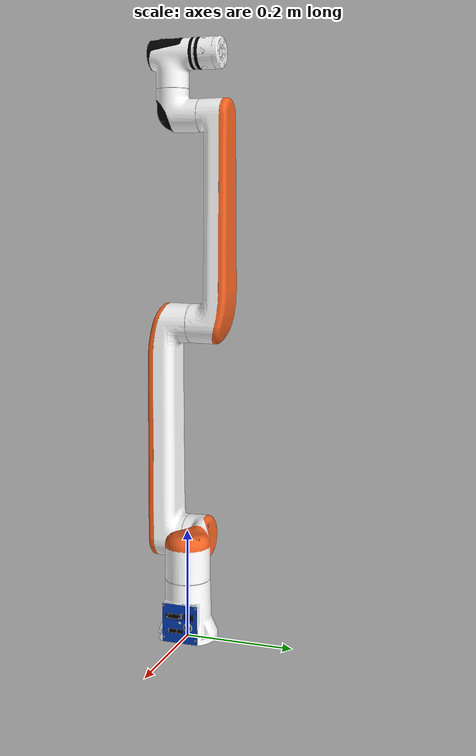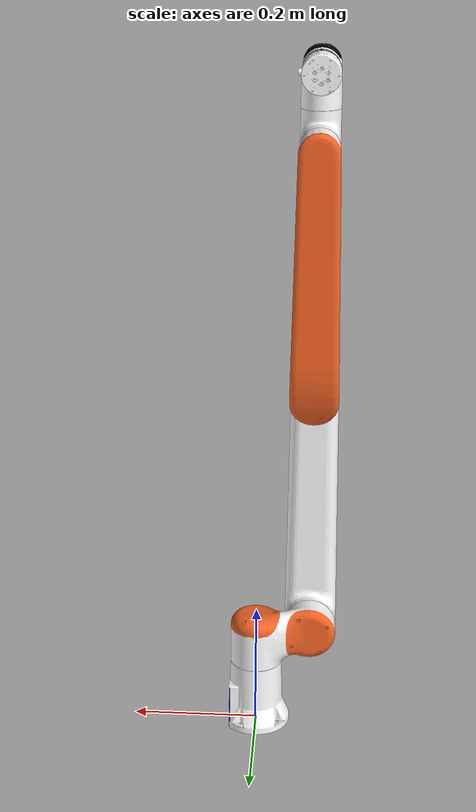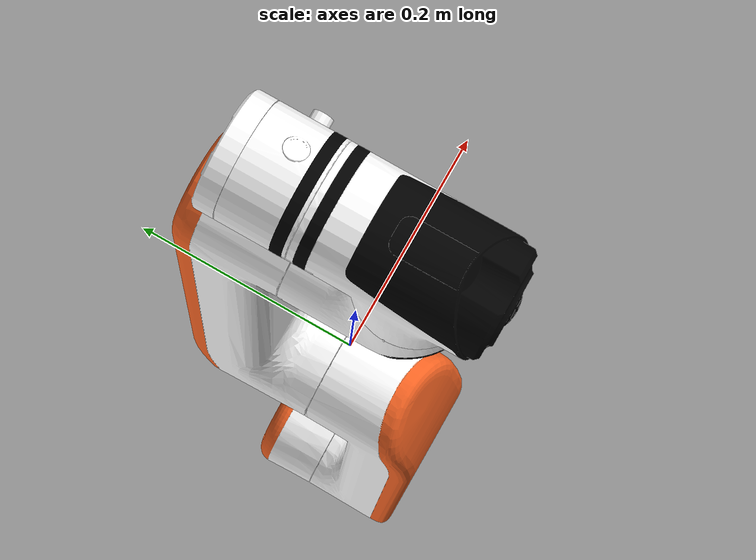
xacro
<?xml version='1.0' encoding='utf-8'?>
<robot name="rm_eco63_description">
  <link name="base_root" />
  <joint name="base_root_joint" type="fixed">
    <origin rpy="0 0 0" xyz="0 0 0" />
    <parent link="base_root" />
    <child link="base_link" />
  </joint>
  <link name="base_link">
    <inertial>
      <origin rpy="0 0 0" xyz="0.00020533 -8.2462E-05 0.042566" />
      <mass value="1" />
      <inertia ixx="0.00082414" ixy="-2.9336E-06" ixz="2.8699E-05" iyy="0.0008206" iyz="-2.2123E-06" izz="0.00068569" />
    </inertial>
    <collision>
      <origin rpy="0 0 0" xyz="0 0 0" />
      <geometry>
        <mesh filename="package://rm_description/meshes/rm_eco63_arm/base_link.STL" />
      </geometry>
    </collision>
    <visual>
      <origin xyz="0 0 0" rpy="0 0 0" />
      <geometry>
        <mesh filename="package://rm_description/meshes/dae/eco63/base_link.dae" />
      </geometry>
    </visual>
  </link>
  <link name="Link1">
    <inertial>
      <origin rpy="0 0 0" xyz="-0.0122 -0.0001 -0.0346" />
      <mass value="1.6026" />
      <inertia ixx="0.0020078355" ixy="-0.000043739" ixz="-0.0006663696" iyy="0.0033806191" iyz="-0.0000114927" izz="0.0025157844" />
    </inertial>
    <collision>
      <origin rpy="0 0 0" xyz="0 0 0" />
      <geometry>
        <mesh filename="package://rm_description/meshes/rm_eco63_arm/Link1.STL" />
      </geometry>
    </collision>
    <visual>
      <origin xyz="0 0 0" rpy="0 0 0" />
      <geometry>
        <mesh filename="package://rm_description/meshes/dae/eco63/link1_v1.0.dae" />
      </geometry>
    </visual>
  </link>
  <joint name="joint1" type="revolute">
    <origin rpy="0 0 0" xyz="0 0 0.1625" />
    <parent link="base_link" />
    <child link="Link1" />
    <axis xyz="0 0 1" />
    <limit effort="60" lower="-3.106" upper="3.106" velocity="3.14" />
  </joint>
  <link name="Link2">
    <inertial>
      <origin rpy="0 0 0" xyz="0.123600000728332 9.86871964907185e-05 0.0551000007331541" />
      <mass value="2.8169" />
      <inertia ixx="0.00305137723898191" ixy="2.86097284213423e-06" ixz="0.00369151818306214" iyy="0.059635782030822" iyz="-4.77799806514506e-06" izz="0.059632876930196" />
    </inertial>
    <collision>
      <origin rpy="-3.14158530717959 0 -7.34641020638804e-06" xyz="0 0 0" />
      <geometry>
        <mesh filename="package://rm_description/meshes/rm_eco63_arm/Link2.STL" />
      </geometry>
    </collision>
    <visual>
      <origin xyz="0 0 0" rpy="-3.14158530717959 0 -7.34641020638804e-06" />
      <geometry>
        <mesh filename="package://rm_description/meshes/dae/eco63/link2_v1.0.dae" />
      </geometry>
    </visual>
  </link>
  <joint name="joint2" type="revolute">
    <origin rpy="-1.57079265348487 -1.57079265358979 3.14159265348487" xyz="-0.086 0 0" />
    <parent link="Link1" />
    <child link="Link2" />
    <axis xyz="5.39695145436e-11 7.34641020638507e-06 -0.999999999973015" />
    <limit effort="60" lower="-3.106" upper="2.356" velocity="3.14" />
  </joint>
  <link name="Link3">
    <inertial>
      <origin rpy="0 0 0" xyz="0.160246774026992 -9.88120953800659e-05 0.00679865060963923" />
      <mass value="2.6857" />
      <inertia ixx="0.00303448689033119" ixy="-7.56149251500227e-06" ixz="-0.00404883344765761" iyy="0.0669637574904248" iyz="-7.95641618581859e-06" izz="0.0659921968192439" />
    </inertial>
    <collision>
      <origin rpy="-6.43905470160977e-08 -0.00872659994555747 7.41080075348466e-06" xyz="0 0 0" />
      <geometry>
        <mesh filename="package://rm_description/meshes/rm_eco63_arm/Link3.STL" />
      </geometry>
    </collision>
    <visual>
      <origin xyz="0 0 0" rpy="-6.43905470160977e-08 -0.00872659994555747 7.41080075348466e-06" />
      <geometry>
        <mesh filename="package://rm_description/meshes/dae/eco63/link3_v1.0.dae" />
      </geometry>
    </visual>
  </link>
  <joint name="joint3" type="revolute">
    <origin rpy="-3.14158530717959 -0.00872660000000014 0" xyz="0.409999999988936 -3.01202818462926e-06 0" />
    <parent link="Link2" />
    <child link="Link3" />
    <axis xyz="-0.00872648918596077 -2.79725562366948e-10 0.999961923468332" />
    <limit effort="30" lower="-2.932" upper="2.7576" velocity="3.14" />
  </joint>
  <link name="Link4">
    <inertial>
      <origin rpy="0 0 0" xyz="2.66160203449442e-07 -0.035899999999215 0.0036999999980435" />
      <mass value="0.625" />
      <inertia ixx="0.000545633601743592" ixy="-1.17310739645598e-07" ixz="-1.19697712100337e-07" iyy="0.000317334498257634" iyz="-0.0000813961" izz="0.0005169693" />
    </inertial>
    <collision>
      <origin rpy="5.44983364746417e-11 3.17744588418378e-08 7.41065843880045e-06" xyz="0 0 0" />
      <geometry>
        <mesh filename="package://rm_description/meshes/rm_eco63_arm/Link4.STL" />
      </geometry>
    </collision>
    <visual>
      <origin xyz="0 0 0" rpy="5.44983364746417e-11 3.17744588418378e-08 7.41065843880045e-06" />
      <geometry>
        <mesh filename="package://rm_description/meshes/dae/eco63/link4_v1.0.dae" />
      </geometry>
    </visual>
  </link>
  <joint name="joint4" type="revolute">
    <origin rpy="-0.00872659999999981 0 1.5708" xyz="0.380499512394097 2.81601353437318e-06 -0.0555806914397865" />
    <parent link="Link3" />
    <child link="Link4" />
    <axis xyz="3.17744590494417e-08 -5.42628458021758e-11 0.999999999999999" />
    <limit effort="10" lower="-3.106" upper="3.106" velocity="3.14" />
  </joint>
  <link name="Link5">
    <inertial>
      <origin rpy="0 0 0" xyz="-4.81280235991029e-08 0.0246000000003597 -0.0065999999984839" />
      <mass value="0.6743" />
      <inertia ixx="0.0006850659" ixy="-5.79550732114318e-07" ixz="-1.08014144854789e-08" iyy="0.0003873373" iyz="-0.000113520795720502" izz="0.0006178918" />
    </inertial>
    <collision>
      <origin rpy="5.42627659536425e-11 7.41065832210452e-06 -3.18016794599308e-08" xyz="0 0 0" />
      <geometry>
        <mesh filename="package://rm_description/meshes/rm_eco63_arm/Link5.STL" />
      </geometry>
    </collision>
    <visual>
      <origin xyz="0 0 0" rpy="5.42627659536425e-11 7.41065832210452e-06 -3.18016794599308e-08" />
      <geometry>
        <mesh filename="package://rm_description/meshes/dae/eco63/link5_v1.0.dae" />
      </geometry>
    </visual>
  </link>
  <joint name="joint5" type="revolute">
    <origin rpy="1.5708 0 0" xyz="8.15172428261992e-07 -0.109999999996979 -5.99481932343507e-12" />
    <parent link="Link4" />
    <child link="Link5" />
    <axis xyz="7.41065832198128e-06 -5.4498458344048e-11 0.999999999972541" />
    <limit effort="10" lower="-3.106" upper="3.106" velocity="3.14" />
  </joint>
  <link name="Link6">
    <inertial>
      <origin rpy="0 0 0" xyz="0.000999999679050503 7.41120649346072e-09 -0.0101000000317744" />
      <mass value="0.248" />
      <inertia ixx="0.0000441232" ixy="-6.35329685252655e-08" ixz="-0.0000002997" iyy="0.0000350778" iyz="-2.89022206024016e-08" izz="0.0000654409" />
    </inertial>
    <collision>
      <origin rpy="5.44983364746417e-11 3.17744588418378e-08 7.41065843880045e-06" xyz="0 0 0" />
      <geometry>
        <mesh filename="package://rm_description/meshes/rm_eco63_arm/Link6_6fb.STL" />
      </geometry>
    </collision>
    <visual>
      <origin xyz="0 0 0" rpy="5.44983364746417e-11 3.17744588418378e-08 7.41065843880045e-06" />
      <geometry>
        <mesh filename="package://rm_description/meshes/dae/eco63/link6Fb_v1.0.dae" />
      </geometry>
    </visual>
  </link>
  <joint name="joint6" type="revolute">
    <origin rpy="-1.5708 0 0" xyz="3.06886211205063e-09 0.0964999999999999 5.2363548869315e-12" />
    <parent link="Link5" />
    <child link="Link6" />
    <axis xyz="3.177445904944e-08 -5.42628458021758e-11 0.999999999999999" />
    <limit effort="10" lower="-6.28" upper="6.28" velocity="3.14" />
  </joint>
</robot>
